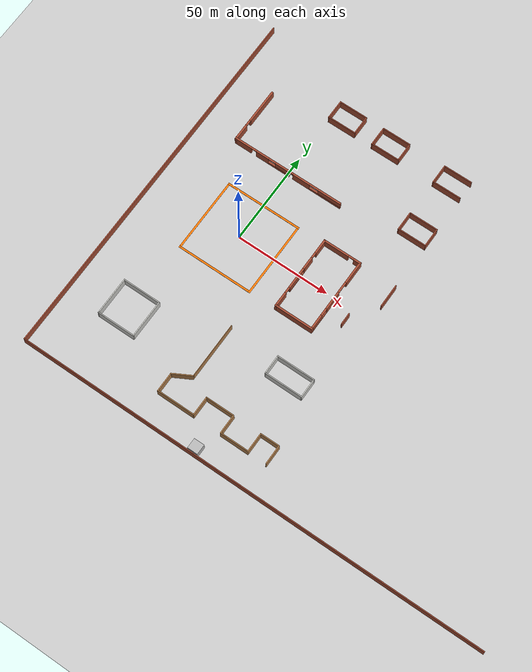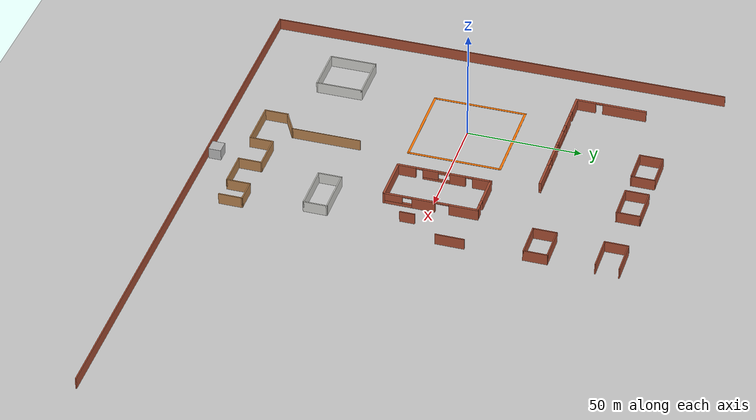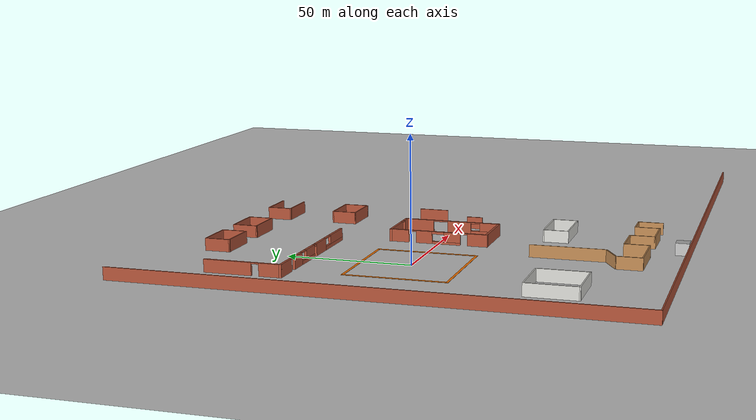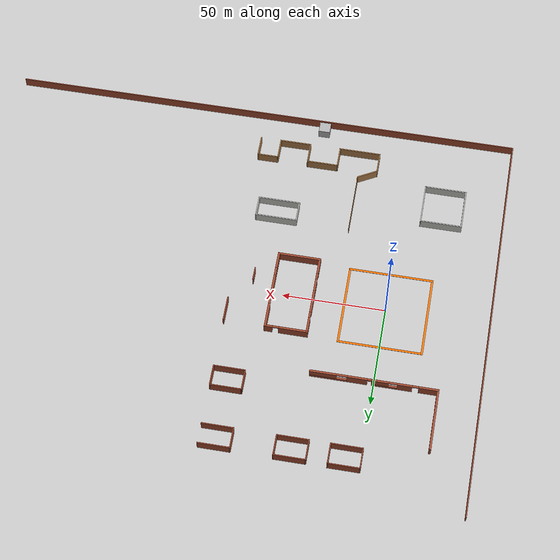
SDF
<sdf version="1.7">
 <world name="default">
  <model name="ground_plane">
   <static>1</static>
   <link name="link">
    <collision name="collision">
     <geometry><plane><normal>0 0 1</normal><size>100 100</size></plane></geometry>
     <surface><friction><ode><mu>100</mu><mu2>50</mu2></ode></friction></surface>
    </collision>
    <visual name="visual">
     <cast_shadows>0</cast_shadows>
     <geometry><plane><normal>0 0 1</normal><size>100 100</size></plane></geometry>
     <material>
      <script><uri>file://media/materials/scripts/gazebo.material</uri><name>Gazebo/Grey</name></script>
     </material>
    </visual>
   </link>
  </model>
  <model name="ceiling">
   <link name="link">
    <inertial>
     <mass>100000</mass>
     <inertia><ixx>100000</ixx><ixy>0</ixy><ixz>0</ixz><iyy>100000</iyy><iyz>0</iyz><izz>100000</izz></inertia>
    </inertial>
    <collision name="collision">
     <geometry><box><size>300 300 0.5</size></box></geometry>
     <friction><ode><mu>1</mu><mu2>1</mu2></ode></friction>
     <contact><ode><kp>1e+07</kp><kd>1</kd><min_depth>0.001</min_depth><max_vel>0.1</max_vel></ode></contact>
    </collision>
   </link>
   <pose>-0.759126 -1.98399 5.24929 -2e-05 -2.1e-05 -0.244787</pose>
  </model>
  <model name="Playground">
   <pose>75 0 0 0 -0 0</pose>
   <link name="Wall_0">
    <collision name="Wall_0_Collision">
     <geometry><box><size>200.5 0.5 5</size></box></geometry>
     <pose>0 0 2.5 0 -0 0</pose>
    </collision>
    <visual name="Wall_0_Visual">
     <pose>0 0 2.5 0 -0 0</pose>
     <geometry><box><size>200.5 0.5 5</size></box></geometry>
     <material>
      <script><uri>file://media/materials/scripts/gazebo.material</uri><name>Gazebo/Bricks</name></script>
      <ambient>1 1 1 1</ambient>
     </material>
     <meta><layer>0</layer></meta>
    </visual>
    <pose>-125 0 0 0 -0 -1.5708</pose>
   </link>
   <link name="Wall_1">
    <collision name="Wall_1_Collision">
     <geometry><box><size>250.5 0.5 5</size></box></geometry>
     <pose>0 0 2.5 0 -0 0</pose>
    </collision>
    <visual name="Wall_1_Visual">
     <pose>0 0 2.5 0 -0 0</pose>
     <geometry><box><size>250.5 0.5 5</size></box></geometry>
     <material>
      <script><uri>file://media/materials/scripts/gazebo.material</uri><name>Gazebo/Bricks</name></script>
      <ambient>1 1 1 1</ambient>
     </material>
     <meta><layer>0</layer></meta>
    </visual>
    <pose>-2e-06 -100 0 0 -0 0</pose>
   </link>
   <link name="Wall_11">
    <pose>-40 0 0 0 -0 -1.5708</pose>
    <visual name="Wall_11_Visual_0">
     <pose>-16.411 0 2.5 0 -0 0</pose>
     <geometry><box><size>8.17799 1 5</size></box></geometry>
     <material>
      <script><uri>file://media/materials/scripts/gazebo.material</uri><name>Gazebo/Bricks</name></script>
      <ambient>1 1 1 1</ambient>
     </material>
     <meta><layer>0</layer></meta>
    </visual>
    <collision name="Wall_11_Collision_0">
     <geometry><box><size>8.17799 1 5</size></box></geometry>
     <pose>-16.411 0 2.5 0 -0 0</pose>
    </collision>
    <visual name="Wall_11_Visual_1">
     <pose>-5.95363 0 2.5 0 -0 0</pose>
     <geometry><box><size>6.73676 1 5</size></box></geometry>
     <material>
      <script><uri>file://media/materials/scripts/gazebo.material</uri><name>Gazebo/Bricks</name></script>
      <ambient>1 1 1 1</ambient>
     </material>
     <meta><layer>0</layer></meta>
    </visual>
    <collision name="Wall_11_Collision_1">
     <geometry><box><size>6.73676 1 5</size></box></geometry>
     <pose>-5.95363 0 2.5 0 -0 0</pose>
    </collision>
    <visual name="Wall_11_Visual_2">
     <pose>16.3258 0 2.5 0 -0 0</pose>
     <geometry><box><size>8.34849 1 5</size></box></geometry>
     <material>
      <script><uri>file://media/materials/scripts/gazebo.material</uri><name>Gazebo/Bricks</name></script>
      <ambient>1 1 1 1</ambient>
     </material>
     <meta><layer>0</layer></meta>
    </visual>
    <collision name="Wall_11_Collision_2">
     <geometry><box><size>8.34849 1 5</size></box></geometry>
     <pose>16.3258 0 2.5 0 -0 0</pose>
    </collision>
    <visual name="Wall_11_Visual_3">
     <pose>3.28313 0 0.5 0 -0 0</pose>
     <geometry><box><size>11.7368 1 1</size></box></geometry>
     <material>
      <script><uri>file://media/materials/scripts/gazebo.material</uri><name>Gazebo/Bricks</name></script>
      <ambient>1 1 1 1</ambient>
     </material>
     <meta><layer>0</layer></meta>
    </visual>
    <collision name="Wall_11_Collision_3">
     <geometry><box><size>11.7368 1 1</size></box></geometry>
     <pose>3.28313 0 0.5 0 -0 0</pose>
    </collision>
    <visual name="Wall_11_Visual_4">
     <pose>5.78313 0 3 0 -0 0</pose>
     <geometry><box><size>6.73676 1 4</size></box></geometry>
     <material>
      <script><uri>file://media/materials/scripts/gazebo.material</uri><name>Gazebo/Bricks</name></script>
      <ambient>1 1 1 1</ambient>
     </material>
     <meta><layer>0</layer></meta>
    </visual>
    <collision name="Wall_11_Collision_4">
     <geometry><box><size>6.73676 1 4</size></box></geometry>
     <pose>5.78313 0 3 0 -0 0</pose>
    </collision>
    <visual name="Wall_11_Visual_5">
     <pose>-0.08525 0 4.5 0 -0 0</pose>
     <geometry><box><size>5 1 1</size></box></geometry>
     <material>
      <script><uri>file://media/materials/scripts/gazebo.material</uri><name>Gazebo/Bricks</name></script>
      <ambient>1 1 1 1</ambient>
     </material>
     <meta><layer>0</layer></meta>
    </visual>
    <collision name="Wall_11_Collision_5">
     <geometry><box><size>5 1 1</size></box></geometry>
     <pose>-0.08525 0 4.5 0 -0 0</pose>
    </collision>
    <visual name="Wall_11_Visual_6">
     <pose>-10.822 0 4.75 0 -0 0</pose>
     <geometry><box><size>3 1 0.5</size></box></geometry>
     <material>
      <script><uri>file://media/materials/scripts/gazebo.material</uri><name>Gazebo/Bricks</name></script>
      <ambient>1 1 1 1</ambient>
     </material>
     <meta><layer>0</layer></meta>
    </visual>
    <collision name="Wall_11_Collision_6">
     <geometry><box><size>3 1 0.5</size></box></geometry>
     <pose>-10.822 0 4.75 0 -0 0</pose>
    </collision>
    <visual name="Wall_11_Visual_7">
     <pose>10.6515 0 4.75 0 -0 0</pose>
     <geometry><box><size>3 1 0.5</size></box></geometry>
     <material>
      <script><uri>file://media/materials/scripts/gazebo.material</uri><name>Gazebo/Bricks</name></script>
      <ambient>1 1 1 1</ambient>
     </material>
     <meta><layer>0</layer></meta>
    </visual>
    <collision name="Wall_11_Collision_7">
     <geometry><box><size>3 1 0.5</size></box></geometry>
     <pose>10.6515 0 4.75 0 -0 0</pose>
    </collision>
   </link>
   <link name="Wall_133">
    <pose>-75 40 0 0 -0 0</pose>
    <visual name="Wall_133_Visual_0">
     <pose>-25.689 0 2.5 0 -0 0</pose>
     <geometry><box><size>9.62192 1 5</size></box></geometry>
     <material>
      <script><uri>file://media/materials/scripts/gazebo.material</uri><name>Gazebo/Bricks</name></script>
      <ambient>1 1 1 1</ambient>
     </material>
     <meta><layer>0</layer></meta>
    </visual>
    <collision name="Wall_133_Collision_0">
     <geometry><box><size>9.62192 1 5</size></box></geometry>
     <pose>-25.689 0 2.5 0 -0 0</pose>
    </collision>
    <visual name="Wall_133_Visual_1">
     <pose>-14.3919 0 2.5 0 -0 0</pose>
     <geometry><box><size>6.97234 1 5</size></box></geometry>
     <material>
      <script><uri>file://media/materials/scripts/gazebo.material</uri><name>Gazebo/Bricks</name></script>
      <ambient>1 1 1 1</ambient>
     </material>
     <meta><layer>0</layer></meta>
    </visual>
    <collision name="Wall_133_Collision_1">
     <geometry><box><size>6.97234 1 5</size></box></geometry>
     <pose>-14.3919 0 2.5 0 -0 0</pose>
    </collision>
    <visual name="Wall_133_Visual_2">
     <pose>7.95331 0 2.5 0 -0 0</pose>
     <geometry><box><size>9.53225 1 5</size></box></geometry>
     <material>
      <script><uri>file://media/materials/scripts/gazebo.material</uri><name>Gazebo/Bricks</name></script>
      <ambient>1 1 1 1</ambient>
     </material>
     <meta><layer>0</layer></meta>
    </visual>
    <collision name="Wall_133_Collision_2">
     <geometry><box><size>9.53225 1 5</size></box></geometry>
     <pose>7.95331 0 2.5 0 -0 0</pose>
    </collision>
    <visual name="Wall_133_Visual_3">
     <pose>-4.85928 0 0.75 0 -0 0</pose>
     <geometry><box><size>12.0929 1 1.5</size></box></geometry>
     <material>
      <script><uri>file://media/materials/scripts/gazebo.material</uri><name>Gazebo/Bricks</name></script>
      <ambient>1 1 1 1</ambient>
     </material>
     <meta><layer>0</layer></meta>
    </visual>
    <collision name="Wall_133_Collision_3">
     <geometry><box><size>12.0929 1 1.5</size></box></geometry>
     <pose>-4.85928 0 0.75 0 -0 0</pose>
    </collision>
    <visual name="Wall_133_Visual_4">
     <pose>21.6097 0 0.75 0 -0 0</pose>
     <geometry><box><size>17.7806 1 1.5</size></box></geometry>
     <material>
      <script><uri>file://media/materials/scripts/gazebo.material</uri><name>Gazebo/Bricks</name></script>
      <ambient>1 1 1 1</ambient>
     </material>
     <meta><layer>0</layer></meta>
    </visual>
    <collision name="Wall_133_Collision_4">
     <geometry><box><size>17.7806 1 1.5</size></box></geometry>
     <pose>21.6097 0 0.75 0 -0 0</pose>
    </collision>
    <visual name="Wall_133_Visual_5">
     <pose>-2.85928 0 3.25 0 -0 0</pose>
     <geometry><box><size>8.09293 1 3.5</size></box></geometry>
     <material>
      <script><uri>file://media/materials/scripts/gazebo.material</uri><name>Gazebo/Bricks</name></script>
      <ambient>1 1 1 1</ambient>
     </material>
     <meta><layer>0</layer></meta>
    </visual>
    <collision name="Wall_133_Collision_5">
     <geometry><box><size>8.09293 1 3.5</size></box></geometry>
     <pose>-2.85928 0 3.25 0 -0 0</pose>
    </collision>
    <visual name="Wall_133_Visual_6">
     <pose>-2.85928 0 3.25 0 -0 0</pose>
     <geometry><box><size>8.09293 1 3.5</size></box></geometry>
     <material>
      <script><uri>file://media/materials/scripts/gazebo.material</uri><name>Gazebo/Bricks</name></script>
      <ambient>1 1 1 1</ambient>
     </material>
     <meta><layer>0</layer></meta>
    </visual>
    <collision name="Wall_133_Collision_6">
     <geometry><box><size>8.09293 1 3.5</size></box></geometry>
     <pose>-2.85928 0 3.25 0 -0 0</pose>
    </collision>
    <visual name="Wall_133_Visual_7">
     <pose>24.1097 0 3.25 0 -0 0</pose>
     <geometry><box><size>12.7806 1 3.5</size></box></geometry>
     <material>
      <script><uri>file://media/materials/scripts/gazebo.material</uri><name>Gazebo/Bricks</name></script>
      <ambient>1 1 1 1</ambient>
     </material>
     <meta><layer>0</layer></meta>
    </visual>
    <collision name="Wall_133_Collision_7">
     <geometry><box><size>12.7806 1 3.5</size></box></geometry>
     <pose>24.1097 0 3.25 0 -0 0</pose>
    </collision>
    <visual name="Wall_133_Visual_8">
     <pose>2.18719 0 4.5 0 -0 0</pose>
     <geometry><box><size>2 1 1</size></box></geometry>
     <material>
      <script><uri>file://media/materials/scripts/gazebo.material</uri><name>Gazebo/Bricks</name></script>
      <ambient>1 1 1 1</ambient>
     </material>
     <meta><layer>0</layer></meta>
    </visual>
    <collision name="Wall_133_Collision_8">
     <geometry><box><size>2 1 1</size></box></geometry>
     <pose>2.18719 0 4.5 0 -0 0</pose>
    </collision>
    <visual name="Wall_133_Visual_9">
     <pose>2.18719 0 4.5 0 -0 0</pose>
     <geometry><box><size>2 1 1</size></box></geometry>
     <material>
      <script><uri>file://media/materials/scripts/gazebo.material</uri><name>Gazebo/Bricks</name></script>
      <ambient>1 1 1 1</ambient>
     </material>
     <meta><layer>0</layer></meta>
    </visual>
    <collision name="Wall_133_Collision_9">
     <geometry><box><size>2 1 1</size></box></geometry>
     <pose>2.18719 0 4.5 0 -0 0</pose>
    </collision>
    <visual name="Wall_133_Visual_10">
     <pose>-19.3781 0 4.75 0 -0 0</pose>
     <geometry><box><size>3 1 0.5</size></box></geometry>
     <material>
      <script><uri>file://media/materials/scripts/gazebo.material</uri><name>Gazebo/Bricks</name></script>
      <ambient>1 1 1 1</ambient>
     </material>
     <meta><layer>0</layer></meta>
    </visual>
    <collision name="Wall_133_Collision_10">
     <geometry><box><size>3 1 0.5</size></box></geometry>
     <pose>-19.3781 0 4.75 0 -0 0</pose>
    </collision>
    <visual name="Wall_133_Visual_11">
     <pose>-8.90574 0 4.75 0 -0 0</pose>
     <geometry><box><size>4 1 0.5</size></box></geometry>
     <material>
      <script><uri>file://media/materials/scripts/gazebo.material</uri><name>Gazebo/Bricks</name></script>
      <ambient>1 1 1 1</ambient>
     </material>
     <meta><layer>0</layer></meta>
    </visual>
    <collision name="Wall_133_Collision_11">
     <geometry><box><size>4 1 0.5</size></box></geometry>
     <pose>-8.90574 0 4.75 0 -0 0</pose>
    </collision>
    <visual name="Wall_133_Visual_12">
     <pose>15.2194 0 4.75 0 -0 0</pose>
     <geometry><box><size>5 1 0.5</size></box></geometry>
     <material>
      <script><uri>file://media/materials/scripts/gazebo.material</uri><name>Gazebo/Bricks</name></script>
      <ambient>1 1 1 1</ambient>
     </material>
     <meta><layer>0</layer></meta>
    </visual>
    <collision name="Wall_133_Collision_12">
     <geometry><box><size>5 1 0.5</size></box></geometry>
     <pose>15.2194 0 4.75 0 -0 0</pose>
    </collision>
   </link>
   <link name="Wall_135">
    <collision name="Wall_135_Collision">
     <geometry><box><size>30.25 0.25 5</size></box></geometry>
     <pose>0 0 2.5 0 -0 0</pose>
    </collision>
    <visual name="Wall_135_Visual">
     <pose>0 0 2.5 0 -0 0</pose>
     <geometry><box><size>30.25 0.25 5</size></box></geometry>
     <material>
      <script><uri>file://media/materials/scripts/gazebo.material</uri><name>Gazebo/Wood</name></script>
      <ambient>1 1 1 1</ambient>
     </material>
     <meta><layer>0</layer></meta>
    </visual>
    <pose>-51 -55 0 0 -0 -1.5708</pose>
   </link>
   <link name="Wall_136">
    <collision name="Wall_136_Collision">
     <geometry><box><size>10.7956 0.5 5</size></box></geometry>
     <pose>0 0 2.5 0 -0 0</pose>
    </collision>
    <visual name="Wall_136_Visual">
     <pose>0 0 2.5 0 -0 0</pose>
     <geometry><box><size>10.7956 0.5 5</size></box></geometry>
     <material>
      <script><uri>file://media/materials/scripts/gazebo.material</uri><name>Gazebo/Wood</name></script>
      <ambient>1 1 1 1</ambient>
     </material>
     <meta><layer>0</layer></meta>
    </visual>
    <pose>-55.5 -72.5 0 0 -0 -2.63449</pose>
   </link>
   <link name="Wall_137">
    <collision name="Wall_137_Collision">
     <geometry><box><size>10.5 0.5 5</size></box></geometry>
     <pose>0 0 2.5 0 -0 0</pose>
    </collision>
    <visual name="Wall_137_Visual">
     <pose>0 0 2.5 0 -0 0</pose>
     <geometry><box><size>10.5 0.5 5</size></box></geometry>
     <material>
      <script><uri>file://media/materials/scripts/gazebo.material</uri><name>Gazebo/Wood</name></script>
      <ambient>1 1 1 1</ambient>
     </material>
     <meta><layer>0</layer></meta>
    </visual>
    <pose>-60 -80 0 0 -0 -1.5708</pose>
   </link>
   <link name="Wall_138">
    <collision name="Wall_138_Collision">
     <geometry><box><size>20.5 0.5 5</size></box></geometry>
     <pose>0 0 2.5 0 -0 0</pose>
    </collision>
    <visual name="Wall_138_Visual">
     <pose>0 0 2.5 0 -0 0</pose>
     <geometry><box><size>20.5 0.5 5</size></box></geometry>
     <material>
      <script><uri>file://media/materials/scripts/gazebo.material</uri><name>Gazebo/Wood</name></script>
      <ambient>1 1 1 1</ambient>
     </material>
     <meta><layer>0</layer></meta>
    </visual>
    <pose>-50 -85 0 0 -0 0</pose>
   </link>
   <link name="Wall_139">
    <collision name="Wall_139_Collision">
     <geometry><box><size>10.5 0.5 5</size></box></geometry>
     <pose>0 0 2.5 0 -0 0</pose>
    </collision>
    <visual name="Wall_139_Visual">
     <pose>0 0 2.5 0 -0 0</pose>
     <geometry><box><size>10.5 0.5 5</size></box></geometry>
     <material>
      <script><uri>file://media/materials/scripts/gazebo.material</uri><name>Gazebo/Wood</name></script>
      <ambient>1 1 1 1</ambient>
     </material>
     <meta><layer>0</layer></meta>
    </visual>
    <pose>-40 -80 0 0 -0 1.5708</pose>
   </link>
   <link name="Wall_140">
    <collision name="Wall_140_Collision">
     <geometry><box><size>15.5 0.5 5</size></box></geometry>
     <pose>0 0 2.5 0 -0 0</pose>
    </collision>
    <visual name="Wall_140_Visual">
     <pose>0 0 2.5 0 -0 0</pose>
     <geometry><box><size>15.5 0.5 5</size></box></geometry>
     <material>
      <script><uri>file://media/materials/scripts/gazebo.material</uri><name>Gazebo/Wood</name></script>
      <ambient>1 1 1 1</ambient>
     </material>
     <meta><layer>0</layer></meta>
    </visual>
    <pose>-32.5 -75 0 0 -0 0</pose>
   </link>
   <link name="Wall_141">
    <collision name="Wall_141_Collision">
     <geometry><box><size>10.5 0.5 5</size></box></geometry>
     <pose>0 0 2.5 0 -0 0</pose>
    </collision>
    <visual name="Wall_141_Visual">
     <pose>0 0 2.5 0 -0 0</pose>
     <geometry><box><size>10.5 0.5 5</size></box></geometry>
     <material>
      <script><uri>file://media/materials/scripts/gazebo.material</uri><name>Gazebo/Wood</name></script>
      <ambient>1 1 1 1</ambient>
     </material>
     <meta><layer>0</layer></meta>
    </visual>
    <pose>-25 -80 0 0 -0 -1.5708</pose>
   </link>
   <link name="Wall_142">
    <collision name="Wall_142_Collision">
     <geometry><box><size>15.5 0.5 5</size></box></geometry>
     <pose>0 0 2.5 0 -0 0</pose>
    </collision>
    <visual name="Wall_142_Visual">
     <pose>0 0 2.5 0 -0 0</pose>
     <geometry><box><size>15.5 0.5 5</size></box></geometry>
     <material>
      <script><uri>file://media/materials/scripts/gazebo.material</uri><name>Gazebo/Wood</name></script>
      <ambient>1 1 1 1</ambient>
     </material>
     <meta><layer>0</layer></meta>
    </visual>
    <pose>-17.5 -85 0 0 -0 0</pose>
   </link>
   <link name="Wall_143">
    <collision name="Wall_143_Collision">
     <geometry><box><size>10.5 0.5 5</size></box></geometry>
     <pose>0 0 2.5 0 -0 0</pose>
    </collision>
    <visual name="Wall_143_Visual">
     <pose>0 0 2.5 0 -0 0</pose>
     <geometry><box><size>10.5 0.5 5</size></box></geometry>
     <material>
      <script><uri>file://media/materials/scripts/gazebo.material</uri><name>Gazebo/Wood</name></script>
      <ambient>1 1 1 1</ambient>
     </material>
     <meta><layer>0</layer></meta>
    </visual>
    <pose>-10 -80 0 0 -0 1.5708</pose>
   </link>
   <link name="Wall_144">
    <collision name="Wall_144_Collision">
     <geometry><box><size>10.5 0.5 5</size></box></geometry>
     <pose>0 0 2.5 0 -0 0</pose>
    </collision>
    <visual name="Wall_144_Visual">
     <pose>0 0 2.5 0 -0 0</pose>
     <geometry><box><size>10.5 0.5 5</size></box></geometry>
     <material>
      <script><uri>file://media/materials/scripts/gazebo.material</uri><name>Gazebo/Wood</name></script>
      <ambient>1 1 1 1</ambient>
     </material>
     <meta><layer>0</layer></meta>
    </visual>
    <pose>-5 -75 0 0 -0 0</pose>
   </link>
   <link name="Wall_145">
    <collision name="Wall_145_Collision">
     <geometry><box><size>10.5 0.5 5</size></box></geometry>
     <pose>0 0 2.5 0 -0 0</pose>
    </collision>
    <visual name="Wall_145_Visual">
     <pose>0 0 2.5 0 -0 0</pose>
     <geometry><box><size>10.5 0.5 5</size></box></geometry>
     <material>
      <script><uri>file://media/materials/scripts/gazebo.material</uri><name>Gazebo/Wood</name></script>
      <ambient>1 1 1 1</ambient>
     </material>
     <meta><layer>0</layer></meta>
    </visual>
    <pose>-2e-06 -80 0 0 -0 -1.5708</pose>
   </link>
   <link name="Wall_15">
    <pose>-30 20 0 0 -0 0</pose>
    <visual name="Wall_15_Visual_0">
     <pose>-3.5 0 2.5 0 -0 0</pose>
     <geometry><box><size>14 1 5</size></box></geometry>
     <material>
      <script><uri>file://media/materials/scripts/gazebo.material</uri><name>Gazebo/Bricks</name></script>
      <ambient>1 1 1 1</ambient>
     </material>
     <meta><layer>0</layer></meta>
    </visual>
    <collision name="Wall_15_Collision_0">
     <geometry><box><size>14 1 5</size></box></geometry>
     <pose>-3.5 0 2.5 0 -0 0</pose>
    </collision>
    <visual name="Wall_15_Visual_1">
     <pose>8.5 0 2.5 0 -0 0</pose>
     <geometry><box><size>4 1 5</size></box></geometry>
     <material>
      <script><uri>file://media/materials/scripts/gazebo.material</uri><name>Gazebo/Bricks</name></script>
      <ambient>1 1 1 1</ambient>
     </material>
     <meta><layer>0</layer></meta>
    </visual>
    <collision name="Wall_15_Collision_1">
     <geometry><box><size>4 1 5</size></box></geometry>
     <pose>8.5 0 2.5 0 -0 0</pose>
    </collision>
    <visual name="Wall_15_Visual_2">
     <pose>5 0 4.75 0 -0 0</pose>
     <geometry><box><size>3 1 0.5</size></box></geometry>
     <material>
      <script><uri>file://media/materials/scripts/gazebo.material</uri><name>Gazebo/Bricks</name></script>
      <ambient>1 1 1 1</ambient>
     </material>
     <meta><layer>0</layer></meta>
    </visual>
    <collision name="Wall_15_Collision_2">
     <geometry><box><size>3 1 0.5</size></box></geometry>
     <pose>5 0 4.75 0 -0 0</pose>
    </collision>
   </link>
   <link name="Wall_154">
    <collision name="Wall_154_Collision">
     <geometry><box><size>20.5 0.5 5</size></box></geometry>
     <pose>0 0 2.5 0 -0 0</pose>
    </collision>
    <visual name="Wall_154_Visual">
     <pose>0 0 2.5 0 -0 0</pose>
     <geometry><box><size>20.5 0.5 5</size></box></geometry>
     <material>
      <script><uri>file://media/materials/scripts/gazebo.material</uri><name>Gazebo/CeilingTiled</name></script>
      <ambient>1 0.764706 0.305882 1</ambient>
     </material>
     <meta><layer>0</layer></meta>
    </visual>
    <pose>-95 -50 0 0 -0 0</pose>
   </link>
   <link name="Wall_155">
    <collision name="Wall_155_Collision">
     <geometry><box><size>20.5 0.5 5</size></box></geometry>
     <pose>0 0 2.5 0 -0 0</pose>
    </collision>
    <visual name="Wall_155_Visual">
     <pose>0 0 2.5 0 -0 0</pose>
     <geometry><box><size>20.5 0.5 5</size></box></geometry>
     <material>
      <script><uri>file://media/materials/scripts/gazebo.material</uri><name>Gazebo/CeilingTiled</name></script>
      <ambient>1 0.764706 0.305882 1</ambient>
     </material>
     <meta><layer>0</layer></meta>
    </visual>
    <pose>-85 -60 0 0 -0 -1.5708</pose>
   </link>
   <link name="Wall_156">
    <collision name="Wall_156_Collision">
     <geometry><box><size>20.5 0.5 5</size></box></geometry>
     <pose>0 0 2.5 0 -0 0</pose>
    </collision>
    <visual name="Wall_156_Visual">
     <pose>0 0 2.5 0 -0 0</pose>
     <geometry><box><size>20.5 0.5 5</size></box></geometry>
     <material>
      <script><uri>file://media/materials/scripts/gazebo.material</uri><name>Gazebo/CeilingTiled</name></script>
      <ambient>1 0.764706 0.305882 1</ambient>
     </material>
     <meta><layer>0</layer></meta>
    </visual>
    <pose>-95 -70 0 0 -0 3.14159</pose>
   </link>
   <link name="Wall_157">
    <collision name="Wall_157_Collision">
     <geometry><box><size>20.5 0.5 5</size></box></geometry>
     <pose>0 0 2.5 0 -0 0</pose>
    </collision>
    <visual name="Wall_157_Visual">
     <pose>0 0 2.5 0 -0 0</pose>
     <geometry><box><size>20.5 0.5 5</size></box></geometry>
     <material>
      <script><uri>file://media/materials/scripts/gazebo.material</uri><name>Gazebo/CeilingTiled</name></script>
      <ambient>1 0.764706 0.305882 1</ambient>
     </material>
     <meta><layer>0</layer></meta>
    </visual>
    <pose>-105 -60 0 0 -0 1.5708</pose>
   </link>
   <link name="Wall_159">
    <collision name="Wall_159_Collision">
     <geometry><box><size>10.5 0.5 5</size></box></geometry>
     <pose>0 0 2.5 0 -0 0</pose>
    </collision>
    <visual name="Wall_159_Visual">
     <pose>0 0 2.5 0 -0 0</pose>
     <geometry><box><size>10.5 0.5 5</size></box></geometry>
     <material>
      <script><uri>file://media/materials/scripts/gazebo.material</uri><name>Gazebo/CeilingTiled</name></script>
      <ambient>0.435294 0.796078 0.67451 1</ambient>
     </material>
     <meta><layer>0</layer></meta>
    </visual>
    <pose>-25 -45 0 0 -0 -1.5708</pose>
   </link>
   <link name="Wall_16">
    <pose>-20 0 0 0 -0 -1.5708</pose>
    <visual name="Wall_16_Visual_0">
     <pose>-14.25 0 2.5 0 -0 0</pose>
     <geometry><box><size>12.5 1 5</size></box></geometry>
     <material>
      <script><uri>file://media/materials/scripts/gazebo.material</uri><name>Gazebo/Bricks</name></script>
      <ambient>1 1 1 1</ambient>
     </material>
     <meta><layer>0</layer></meta>
    </visual>
    <collision name="Wall_16_Collision_0">
     <geometry><box><size>12.5 1 5</size></box></geometry>
     <pose>-14.25 0 2.5 0 -0 0</pose>
    </collision>
    <visual name="Wall_16_Visual_1">
     <pose>3 0 2.5 0 -0 0</pose>
     <geometry><box><size>10 1 5</size></box></geometry>
     <material>
      <script><uri>file://media/materials/scripts/gazebo.material</uri><name>Gazebo/Bricks</name></script>
      <ambient>1 1 1 1</ambient>
     </material>
     <meta><layer>0</layer></meta>
    </visual>
    <collision name="Wall_16_Collision_1">
     <geometry><box><size>10 1 5</size></box></geometry>
     <pose>3 0 2.5 0 -0 0</pose>
    </collision>
    <visual name="Wall_16_Visual_2">
     <pose>14.25 0 0.75 0 -0 0</pose>
     <geometry><box><size>12.5 1 1.5</size></box></geometry>
     <material>
      <script><uri>file://media/materials/scripts/gazebo.material</uri><name>Gazebo/Bricks</name></script>
      <ambient>1 1 1 1</ambient>
     </material>
     <meta><layer>0</layer></meta>
    </visual>
    <collision name="Wall_16_Collision_2">
     <geometry><box><size>12.5 1 1.5</size></box></geometry>
     <pose>14.25 0 0.75 0 -0 0</pose>
    </collision>
    <visual name="Wall_16_Visual_3">
     <pose>16.25 0 3.25 0 -0 0</pose>
     <geometry><box><size>8.5 1 3.5</size></box></geometry>
     <material>
      <script><uri>file://media/materials/scripts/gazebo.material</uri><name>Gazebo/Bricks</name></script>
      <ambient>1 1 1 1</ambient>
     </material>
     <meta><layer>0</layer></meta>
    </visual>
    <collision name="Wall_16_Collision_3">
     <geometry><box><size>8.5 1 3.5</size></box></geometry>
     <pose>16.25 0 3.25 0 -0 0</pose>
    </collision>
    <visual name="Wall_16_Visual_4">
     <pose>-5 0 4.75 0 -0 0</pose>
     <geometry><box><size>6 1 0.5</size></box></geometry>
     <material>
      <script><uri>file://media/materials/scripts/gazebo.material</uri><name>Gazebo/Bricks</name></script>
      <ambient>1 1 1 1</ambient>
     </material>
     <meta><layer>0</layer></meta>
    </visual>
    <collision name="Wall_16_Collision_4">
     <geometry><box><size>6 1 0.5</size></box></geometry>
     <pose>-5 0 4.75 0 -0 0</pose>
    </collision>
    <visual name="Wall_16_Visual_5">
     <pose>10 0 4.75 0 -0 0</pose>
     <geometry><box><size>4 1 0.5</size></box></geometry>
     <material>
      <script><uri>file://media/materials/scripts/gazebo.material</uri><name>Gazebo/Bricks</name></script>
      <ambient>1 1 1 1</ambient>
     </material>
     <meta><layer>0</layer></meta>
    </visual>
    <collision name="Wall_16_Collision_5">
     <geometry><box><size>4 1 0.5</size></box></geometry>
     <pose>10 0 4.75 0 -0 0</pose>
    </collision>
   </link>
   <link name="Wall_160">
    <collision name="Wall_160_Collision">
     <geometry><box><size>20.5 0.5 5</size></box></geometry>
     <pose>0 0 2.5 0 -0 0</pose>
    </collision>
    <visual name="Wall_160_Visual">
     <pose>0 0 2.5 0 -0 0</pose>
     <geometry><box><size>20.5 0.5 5</size></box></geometry>
     <material>
      <script><uri>file://media/materials/scripts/gazebo.material</uri><name>Gazebo/CeilingTiled</name></script>
      <ambient>0.435294 0.796078 0.67451 1</ambient>
     </material>
     <meta><layer>0</layer></meta>
    </visual>
    <pose>-15 -50 0 0 -0 0</pose>
   </link>
   <link name="Wall_161">
    <collision name="Wall_161_Collision">
     <geometry><box><size>10.5 0.5 5</size></box></geometry>
     <pose>0 0 2.5 0 -0 0</pose>
    </collision>
    <visual name="Wall_161_Visual">
     <pose>0 0 2.5 0 -0 0</pose>
     <geometry><box><size>10.5 0.5 5</size></box></geometry>
     <material>
      <script><uri>file://media/materials/scripts/gazebo.material</uri><name>Gazebo/CeilingTiled</name></script>
      <ambient>0.435294 0.796078 0.67451 1</ambient>
     </material>
     <meta><layer>0</layer></meta>
    </visual>
    <pose>-5 -45 0 0 -0 1.5708</pose>
   </link>
   <link name="Wall_162">
    <collision name="Wall_162_Collision">
     <geometry><box><size>20.5 0.5 5</size></box></geometry>
     <pose>0 0 2.5 0 -0 0</pose>
    </collision>
    <visual name="Wall_162_Visual">
     <pose>0 0 2.5 0 -0 0</pose>
     <geometry><box><size>20.5 0.5 5</size></box></geometry>
     <material>
      <script><uri>file://media/materials/scripts/gazebo.material</uri><name>Gazebo/CeilingTiled</name></script>
      <ambient>0.435294 0.796078 0.67451 1</ambient>
     </material>
     <meta><layer>0</layer></meta>
    </visual>
    <pose>-15 -40 0 0 -0 3.14159</pose>
   </link>
   <link name="Wall_17">
    <collision name="Wall_17_Collision">
     <geometry><box><size>21 1 5</size></box></geometry>
     <pose>0 0 2.5 0 -0 0</pose>
    </collision>
    <visual name="Wall_17_Visual">
     <pose>0 0 2.5 0 -0 0</pose>
     <geometry><box><size>21 1 5</size></box></geometry>
     <material>
      <script><uri>file://media/materials/scripts/gazebo.material</uri><name>Gazebo/Bricks</name></script>
      <ambient>1 1 1 1</ambient>
     </material>
     <meta><layer>0</layer></meta>
    </visual>
    <pose>-30 -20 0 0 -0 3.14159</pose>
   </link>
   <link name="Wall_181">
    <collision name="Wall_181_Collision">
     <geometry><box><size>10.5 0.5 5</size></box></geometry>
     <pose>0 0 2.5 0 -0 0</pose>
    </collision>
    <visual name="Wall_181_Visual">
     <pose>0 0 2.5 0 -0 0</pose>
     <geometry><box><size>10.5 0.5 5</size></box></geometry>
     <material>
      <script><uri>file://media/materials/scripts/gazebo.material</uri><name>Gazebo/Bricks</name></script>
      <ambient>0.760784 0.662745 0.627451 1</ambient>
     </material>
     <meta><layer>0</layer></meta>
    </visual>
    <pose>-15 50 0 0 -0 -1.5708</pose>
   </link>
   <link name="Wall_182">
    <collision name="Wall_182_Collision">
     <geometry><box><size>15.5 0.5 5</size></box></geometry>
     <pose>0 0 2.5 0 -0 0</pose>
    </collision>
    <visual name="Wall_182_Visual">
     <pose>0 0 2.5 0 -0 0</pose>
     <geometry><box><size>15.5 0.5 5</size></box></geometry>
     <material>
      <script><uri>file://media/materials/scripts/gazebo.material</uri><name>Gazebo/Bricks</name></script>
      <ambient>0.760784 0.662745 0.627451 1</ambient>
     </material>
     <meta><layer>0</layer></meta>
    </visual>
    <pose>-7.5 45 0 0 -0 0</pose>
   </link>
   <link name="Wall_183">
    <collision name="Wall_183_Collision">
     <geometry><box><size>10.5 0.5 5</size></box></geometry>
     <pose>0 0 2.5 0 -0 0</pose>
    </collision>
    <visual name="Wall_183_Visual">
     <pose>0 0 2.5 0 -0 0</pose>
     <geometry><box><size>10.5 0.5 5</size></box></geometry>
     <material>
      <script><uri>file://media/materials/scripts/gazebo.material</uri><name>Gazebo/Bricks</name></script>
      <ambient>0.760784 0.662745 0.627451 1</ambient>
     </material>
     <meta><layer>0</layer></meta>
    </visual>
    <pose>-2e-06 50 0 0 -0 1.5708</pose>
   </link>
   <link name="Wall_184">
    <collision name="Wall_184_Collision">
     <geometry><box><size>15.5 0.5 5</size></box></geometry>
     <pose>0 0 2.5 0 -0 0</pose>
    </collision>
    <visual name="Wall_184_Visual">
     <pose>0 0 2.5 0 -0 0</pose>
     <geometry><box><size>15.5 0.5 5</size></box></geometry>
     <material>
      <script><uri>file://media/materials/scripts/gazebo.material</uri><name>Gazebo/Bricks</name></script>
      <ambient>0.760784 0.662745 0.627451 1</ambient>
     </material>
     <meta><layer>0</layer></meta>
    </visual>
    <pose>-7.5 55 0 0 -0 3.14159</pose>
   </link>
   <link name="Wall_19">
    <collision name="Wall_19_Collision">
     <geometry><box><size>12.5 0.5 5</size></box></geometry>
     <pose>0 0 2.5 0 -0 0</pose>
    </collision>
    <visual name="Wall_19_Visual">
     <pose>0 0 2.5 0 -0 0</pose>
     <geometry><box><size>12.5 0.5 5</size></box></geometry>
     <material>
      <script><uri>file://media/materials/scripts/gazebo.material</uri><name>Gazebo/Bricks</name></script>
      <ambient>1 1 1 1</ambient>
     </material>
     <meta><layer>0</layer></meta>
    </visual>
    <pose>-2e-06 14 0 0 -0 1.5708</pose>
   </link>
   <link name="Wall_202">
    <pose>-105 55 0 0 -0 1.5708</pose>
    <visual name="Wall_202_Visual_0">
     <pose>-11 0 2.5 0 -0 0</pose>
     <geometry><box><size>9 1 5</size></box></geometry>
     <material>
      <script><uri>file://media/materials/scripts/gazebo.material</uri><name>Gazebo/Bricks</name></script>
      <ambient>1 1 1 1</ambient>
     </material>
     <meta><layer>0</layer></meta>
    </visual>
    <collision name="Wall_202_Collision_0">
     <geometry><box><size>9 1 5</size></box></geometry>
     <pose>-11 0 2.5 0 -0 0</pose>
    </collision>
    <visual name="Wall_202_Visual_1">
     <pose>6 0 2.5 0 -0 0</pose>
     <geometry><box><size>19 1 5</size></box></geometry>
     <material>
      <script><uri>file://media/materials/scripts/gazebo.material</uri><name>Gazebo/Bricks</name></script>
      <ambient>1 1 1 1</ambient>
     </material>
     <meta><layer>0</layer></meta>
    </visual>
    <collision name="Wall_202_Collision_1">
     <geometry><box><size>19 1 5</size></box></geometry>
     <pose>6 0 2.5 0 -0 0</pose>
    </collision>
    <visual name="Wall_202_Visual_2">
     <pose>-5 0 4.75 0 -0 0</pose>
     <geometry><box><size>3 1 0.5</size></box></geometry>
     <material>
      <script><uri>file://media/materials/scripts/gazebo.material</uri><name>Gazebo/Bricks</name></script>
      <ambient>1 1 1 1</ambient>
     </material>
     <meta><layer>0</layer></meta>
    </visual>
    <collision name="Wall_202_Collision_2">
     <geometry><box><size>3 1 0.5</size></box></geometry>
     <pose>-5 0 4.75 0 -0 0</pose>
    </collision>
   </link>
   <link name="Wall_23">
    <collision name="Wall_23_Collision">
     <geometry><box><size>6.5 0.5 5</size></box></geometry>
     <pose>0 0 2.5 0 -0 0</pose>
    </collision>
    <visual name="Wall_23_Visual">
     <pose>0 0 2.5 0 -0 0</pose>
     <geometry><box><size>6.5 0.5 5</size></box></geometry>
     <material>
      <script><uri>file://media/materials/scripts/gazebo.material</uri><name>Gazebo/Bricks</name></script>
      <ambient>1 1 1 1</ambient>
     </material>
     <meta><layer>0</layer></meta>
    </visual>
    <pose>-10 -7 0 0 -0 -1.5708</pose>
   </link>
   <link name="Wall_48">
    <collision name="Wall_48_Collision">
     <geometry><box><size>15.5 0.5 5</size></box></geometry>
     <pose>0 0 2.5 0 -0 0</pose>
    </collision>
    <visual name="Wall_48_Visual">
     <pose>0 0 2.5 0 -0 0</pose>
     <geometry><box><size>15.5 0.5 5</size></box></geometry>
     <material>
      <script><uri>file://media/materials/scripts/gazebo.material</uri><name>Gazebo/Bricks</name></script>
      <ambient>0.996078 0.47451 0.0196078 1</ambient>
     </material>
     <meta><layer>0</layer></meta>
    </visual>
    <pose>-7.5 85 0 0 -0 0</pose>
   </link>
   <link name="Wall_50">
    <collision name="Wall_50_Collision">
     <geometry><box><size>15.5 0.5 5</size></box></geometry>
     <pose>0 0 2.5 0 -0 0</pose>
    </collision>
    <visual name="Wall_50_Visual">
     <pose>0 0 2.5 0 -0 0</pose>
     <geometry><box><size>15.5 0.5 5</size></box></geometry>
     <material>
      <script><uri>file://media/materials/scripts/gazebo.material</uri><name>Gazebo/Bricks</name></script>
      <ambient>0.996078 0.47451 0.0196078 1</ambient>
     </material>
     <meta><layer>0</layer></meta>
    </visual>
    <pose>-7.5 75 0 0 -0 3.14159</pose>
   </link>
   <link name="Wall_51">
    <collision name="Wall_51_Collision">
     <geometry><box><size>10.5 0.5 5</size></box></geometry>
     <pose>0 0 2.5 0 -0 0</pose>
    </collision>
    <visual name="Wall_51_Visual">
     <pose>0 0 2.5 0 -0 0</pose>
     <geometry><box><size>10.5 0.5 5</size></box></geometry>
     <material>
      <script><uri>file://media/materials/scripts/gazebo.material</uri><name>Gazebo/Bricks</name></script>
      <ambient>0.996078 0.47451 0.0196078 1</ambient>
     </material>
     <meta><layer>0</layer></meta>
    </visual>
    <pose>-15 80 0 0 -0 1.5708</pose>
   </link>
   <link name="Wall_58">
    <collision name="Wall_58_Collision">
     <geometry><box><size>10.5 0.5 5</size></box></geometry>
     <pose>0 0 2.5 0 -0 0</pose>
    </collision>
    <visual name="Wall_58_Visual">
     <pose>0 0 2.5 0 -0 0</pose>
     <geometry><box><size>10.5 0.5 5</size></box></geometry>
     <material>
      <script><uri>file://media/materials/scripts/gazebo.material</uri><name>Gazebo/Bricks</name></script>
      <ambient>0.996078 0.47451 0.0196078 1</ambient>
     </material>
     <meta><layer>0</layer></meta>
    </visual>
    <pose>-35 80 0 0 -0 -1.5708</pose>
   </link>
   <link name="Wall_59">
    <collision name="Wall_59_Collision">
     <geometry><box><size>15.5 0.5 5</size></box></geometry>
     <pose>0 0 2.5 0 -0 0</pose>
    </collision>
    <visual name="Wall_59_Visual">
     <pose>0 0 2.5 0 -0 0</pose>
     <geometry><box><size>15.5 0.5 5</size></box></geometry>
     <material>
      <script><uri>file://media/materials/scripts/gazebo.material</uri><name>Gazebo/Bricks</name></script>
      <ambient>0.996078 0.47451 0.0196078 1</ambient>
     </material>
     <meta><layer>0</layer></meta>
    </visual>
    <pose>-42.5 75 0 0 -0 3.14159</pose>
   </link>
   <link name="Wall_6">
    <collision name="Wall_6_Collision">
     <geometry><box><size>41 1 0.1</size></box></geometry>
     <pose>0 0 0.05 0 -0 0</pose>
    </collision>
    <visual name="Wall_6_Visual">
     <pose>0 0 0.05 0 -0 0</pose>
     <geometry><box><size>41 1 0.1</size></box></geometry>
     <material>
      <script><uri>file://media/materials/scripts/gazebo.material</uri><name>Gazebo/Grey</name></script>
      <ambient>0.996078 0.47451 0.0196078 1</ambient>
     </material>
     <meta><layer>0</layer></meta>
    </visual>
    <pose>-55 0 0 0 -0 -1.5708</pose>
   </link>
   <link name="Wall_60">
    <collision name="Wall_60_Collision">
     <geometry><box><size>10.5 0.5 5</size></box></geometry>
     <pose>0 0 2.5 0 -0 0</pose>
    </collision>
    <visual name="Wall_60_Visual">
     <pose>0 0 2.5 0 -0 0</pose>
     <geometry><box><size>10.5 0.5 5</size></box></geometry>
     <material>
      <script><uri>file://media/materials/scripts/gazebo.material</uri><name>Gazebo/Bricks</name></script>
      <ambient>0.996078 0.47451 0.0196078 1</ambient>
     </material>
     <meta><layer>0</layer></meta>
    </visual>
    <pose>-50 80 0 0 -0 1.5708</pose>
   </link>
   <link name="Wall_61">
    <collision name="Wall_61_Collision">
     <geometry><box><size>15.5 0.5 5</size></box></geometry>
     <pose>0 0 2.5 0 -0 0</pose>
    </collision>
    <visual name="Wall_61_Visual">
     <pose>0 0 2.5 0 -0 0</pose>
     <geometry><box><size>15.5 0.5 5</size></box></geometry>
     <material>
      <script><uri>file://media/materials/scripts/gazebo.material</uri><name>Gazebo/Bricks</name></script>
      <ambient>0.996078 0.47451 0.0196078 1</ambient>
     </material>
     <meta><layer>0</layer></meta>
    </visual>
    <pose>-42.5 85 0 0 -0 0</pose>
   </link>
   <link name="Wall_63">
    <collision name="Wall_63_Collision">
     <geometry><box><size>10.5 0.5 5</size></box></geometry>
     <pose>0 0 2.5 0 -0 0</pose>
    </collision>
    <visual name="Wall_63_Visual">
     <pose>0 0 2.5 0 -0 0</pose>
     <geometry><box><size>10.5 0.5 5</size></box></geometry>
     <material>
      <script><uri>file://media/materials/scripts/gazebo.material</uri><name>Gazebo/Bricks</name></script>
      <ambient>0.996078 0.47451 0.0196078 1</ambient>
     </material>
     <meta><layer>0</layer></meta>
    </visual>
    <pose>-60 80 0 0 -0 -1.5708</pose>
   </link>
   <link name="Wall_64">
    <collision name="Wall_64_Collision">
     <geometry><box><size>15.5 0.5 5</size></box></geometry>
     <pose>0 0 2.5 0 -0 0</pose>
    </collision>
    <visual name="Wall_64_Visual">
     <pose>0 0 2.5 0 -0 0</pose>
     <geometry><box><size>15.5 0.5 5</size></box></geometry>
     <material>
      <script><uri>file://media/materials/scripts/gazebo.material</uri><name>Gazebo/Bricks</name></script>
      <ambient>0.996078 0.47451 0.0196078 1</ambient>
     </material>
     <meta><layer>0</layer></meta>
    </visual>
    <pose>-67.5 75 0 0 -0 3.14159</pose>
   </link>
   <link name="Wall_65">
    <collision name="Wall_65_Collision">
     <geometry><box><size>10.5 0.5 5</size></box></geometry>
     <pose>0 0 2.5 0 -0 0</pose>
    </collision>
    <visual name="Wall_65_Visual">
     <pose>0 0 2.5 0 -0 0</pose>
     <geometry><box><size>10.5 0.5 5</size></box></geometry>
     <material>
      <script><uri>file://media/materials/scripts/gazebo.material</uri><name>Gazebo/Bricks</name></script>
      <ambient>0.996078 0.47451 0.0196078 1</ambient>
     </material>
     <meta><layer>0</layer></meta>
    </visual>
    <pose>-75 80 0 0 -0 1.5708</pose>
   </link>
   <link name="Wall_66">
    <collision name="Wall_66_Collision">
     <geometry><box><size>15.5 0.5 5</size></box></geometry>
     <pose>0 0 2.5 0 -0 0</pose>
    </collision>
    <visual name="Wall_66_Visual">
     <pose>0 0 2.5 0 -0 0</pose>
     <geometry><box><size>15.5 0.5 5</size></box></geometry>
     <material>
      <script><uri>file://media/materials/scripts/gazebo.material</uri><name>Gazebo/Bricks</name></script>
      <ambient>0.996078 0.47451 0.0196078 1</ambient>
     </material>
     <meta><layer>0</layer></meta>
    </visual>
    <pose>-67.5 85 0 0 -0 0</pose>
   </link>
   <link name="Wall_7">
    <collision name="Wall_7_Collision">
     <geometry><box><size>41 1 0.1</size></box></geometry>
     <pose>0 0 0.05 0 -0 0</pose>
    </collision>
    <visual name="Wall_7_Visual">
     <pose>0 0 0.05 0 -0 0</pose>
     <geometry><box><size>41 1 0.1</size></box></geometry>
     <material>
      <script><uri>file://media/materials/scripts/gazebo.material</uri><name>Gazebo/Grey</name></script>
      <ambient>0.996078 0.47451 0.0196078 1</ambient>
     </material>
     <meta><layer>0</layer></meta>
    </visual>
    <pose>-75 -20 0 0 -0 3.14159</pose>
   </link>
   <link name="Wall_8">
    <collision name="Wall_8_Collision">
     <geometry><box><size>41 1 0.1</size></box></geometry>
     <pose>0 0 0.05 0 -0 0</pose>
    </collision>
    <visual name="Wall_8_Visual">
     <pose>0 0 0.05 0 -0 0</pose>
     <geometry><box><size>41 1 0.1</size></box></geometry>
     <material>
      <script><uri>file://media/materials/scripts/gazebo.material</uri><name>Gazebo/Grey</name></script>
      <ambient>0.996078 0.47451 0.0196078 1</ambient>
     </material>
     <meta><layer>0</layer></meta>
    </visual>
    <pose>-95 0 0 0 -0 1.5708</pose>
   </link>
   <link name="Wall_9">
    <collision name="Wall_9_Collision">
     <geometry><box><size>41 1 0.1</size></box></geometry>
     <pose>0 0 0.05 0 -0 0</pose>
    </collision>
    <visual name="Wall_9_Visual">
     <pose>0 0 0.05 0 -0 0</pose>
     <geometry><box><size>41 1 0.1</size></box></geometry>
     <material>
      <script><uri>file://media/materials/scripts/gazebo.material</uri><name>Gazebo/Grey</name></script>
      <ambient>0.996078 0.47451 0.0196078 1</ambient>
     </material>
     <meta><layer>0</layer></meta>
    </visual>
    <pose>-75 20 0 0 -0 0</pose>
   </link>
   <static>1</static>
  </model>
  <model name="Fire_0_clone_0">
   <link name="link_0">
    <inertial>
     <mass>51.3237</mass>
     <inertia><ixx>147.461</ixx><ixy>0</ixy><ixz>0</ixz><iyy>147.461</iyy><iyz>0</iyz><izz>89.614</izz></inertia>
    </inertial>
    <pose>3e-06 5e-06 0 0 -0 0</pose>
    <visual name="visual">
     <geometry><box><size>5.50484 5.39021 4.89914</size></box></geometry>
     <material>
      <lighting>1</lighting>
      <script><uri>file://media/materials/scripts/gazebo.material</uri><name>Gazebo/Fire</name></script>
      <shader type="pixel"/>
     </material>
    </visual>
    <collision name="collision">
     <geometry><box><size>5.50484 5.39021 4.89914</size></box></geometry>
     <surface>
      <friction>
       <ode><mu>1</mu><mu2>1</mu2><fdir1>0 0 0</fdir1><slip1>0</slip1><slip2>0</slip2></ode>
       <torsional>
        <coefficient>1</coefficient>
        <patch_radius>0</patch_radius>
        <surface_radius>0</surface_radius>
        <use_patch_radius>1</use_patch_radius>
        <ode><slip>0</slip></ode>
       </torsional>
      </friction>
      <bounce><restitution_coefficient>0</restitution_coefficient><threshold>1e+06</threshold></bounce>
      <contact>
       <collide_without_contact>0</collide_without_contact>
       <collide_without_contact_bitmask>1</collide_without_contact_bitmask>
       <collide_bitmask>1</collide_bitmask>
       <ode>
        <soft_cfm>0</soft_cfm>
        <soft_erp>0.2</soft_erp>
        <kp>1e+13</kp>
        <kd>1</kd>
        <max_vel>0.01</max_vel>
        <min_depth>0</min_depth>
       </ode>
       <bullet>
        <split_impulse>1</split_impulse>
        <split_impulse_penetration_threshold>-0.01</split_impulse_penetration_threshold>
        <soft_cfm>0</soft_cfm>
        <soft_erp>0.2</soft_erp>
        <kp>1e+13</kp>
        <kd>1</kd>
       </bullet>
      </contact>
     </surface>
    </collision>
   </link>
   <static>0</static>
   <pose>44.533 -96.5812 2.44957 -2e-06 -0 -0</pose>
  </model>
 </world>
</sdf>
